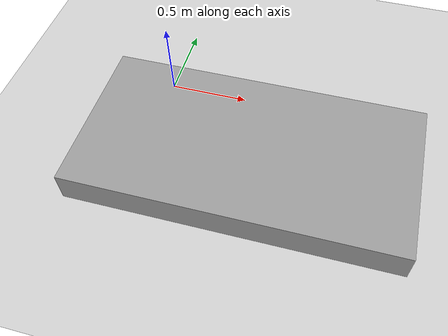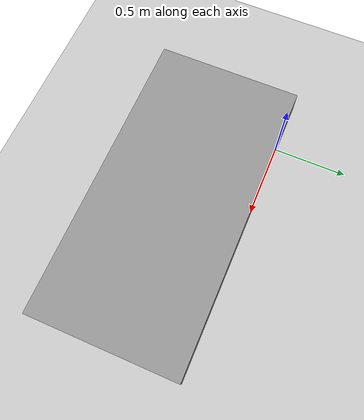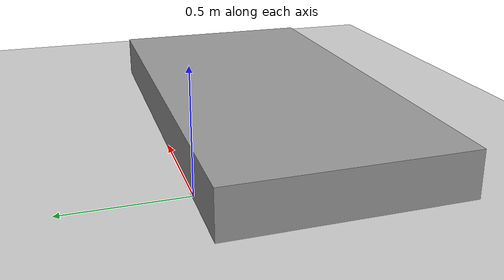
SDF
<sdf version="1.6">
 <world name="default">
  <model name="ground_plane">
   <static>1</static>
   <link name="link">
    <collision name="collision">
     <geometry><plane><normal>0 0 1</normal><size>100 100</size></plane></geometry>
     <surface><friction><ode><mu>1</mu><mu2>1</mu2></ode></friction></surface>
    </collision>
    <visual name="visual">
     <cast_shadows>0</cast_shadows>
     <geometry><plane><normal>0 0 1</normal><size>100 100</size></plane></geometry>
     <material>
      <script><uri>file://media/materials/scripts/gazebo.material</uri><name>Gazebo/Grey</name></script>
     </material>
    </visual>
   </link>
  </model>
  <model name="unit_box">
   <pose>0.657282 -0.49391 0.1 0 -0 0</pose>
   <link name="link">
    <inertial>
     <mass>1000</mass>
     <inertia><ixx>100</ixx><ixy>0</ixy><ixz>0</ixz><iyy>100</iyy><iyz>0</iyz><izz>166</izz></inertia>
    </inertial>
    <collision name="collision"><geometry><box><size>2 1 0.2</size></box></geometry></collision>
    <visual name="visual">
     <geometry><box><size>2 1 0.2</size></box></geometry>
     <material>
      <script><name>Gazebo/Grey</name><uri>file://media/materials/scripts/gazebo.material</uri></script>
     </material>
    </visual>
    <kinematic>1</kinematic>
   </link>
  </model>
 </world>
</sdf>
